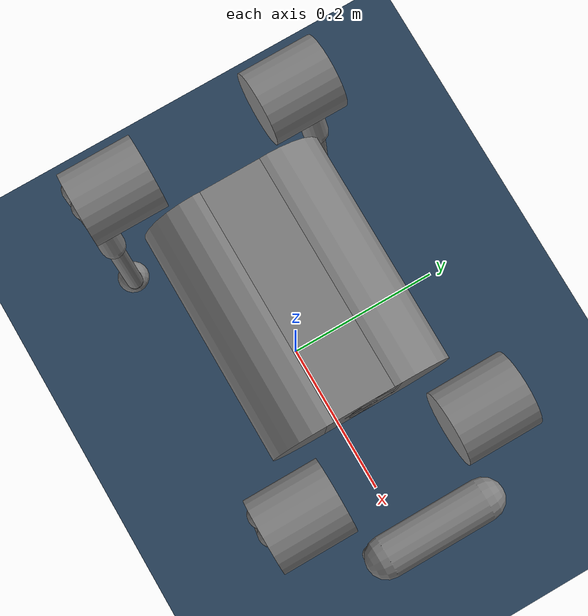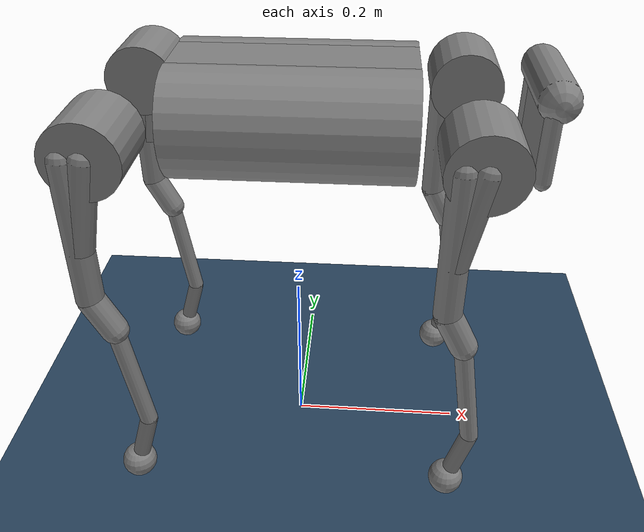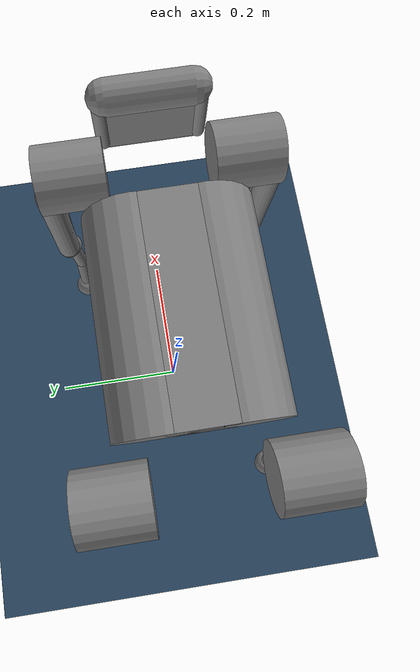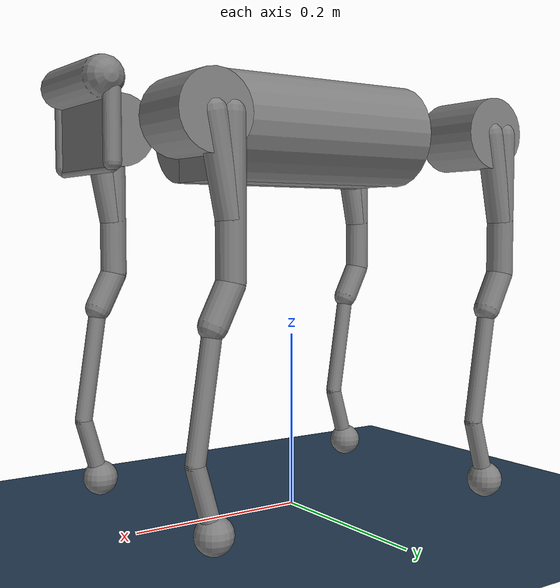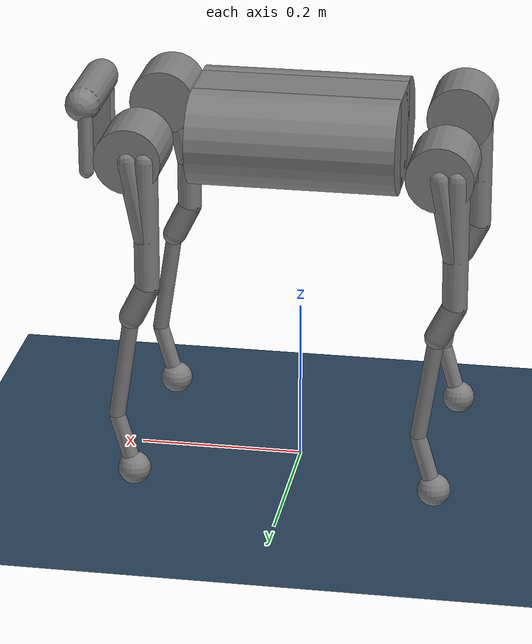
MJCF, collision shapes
<mujoco model="a1 scene">
  <include file="a1.xml"/>

  <statistic extent="1" center="0 0 .3"/>

  <visual>
    <headlight diffuse="0.6 0.6 0.6" ambient="0.3 0.3 0.3" specular="0 0 0"/>
    <rgba haze="0.15 0.25 0.35 1"/>
    <global azimuth="120" elevation="-20"/>
  </visual>

  <asset>
    <texture type="skybox" builtin="gradient" rgb1="0.3 0.5 0.7" rgb2="0 0 0" width="512" height="3072"/>
    <texture type="2d" name="groundplane" builtin="checker" mark="edge" rgb1="0.2 0.3 0.4" rgb2="0.1 0.2 0.3"
      markrgb="0.8 0.8 0.8" width="300" height="300"/>
    <material name="groundplane" texture="groundplane" texuniform="true" texrepeat="5 5" reflectance="0.2"/>
  </asset>

  <worldbody>
    <light pos="0 0 1.5" dir="0 0 -1" directional="true"/>
    <geom name="floor" size="0 0 0.05" type="plane" material="groundplane"/>
  </worldbody>

  <sensor>
    <!-- estimator measurements -->

    <framepos name="torso_pos" objtype="xbody" objname="trunk" />
    <framequat name="torso_quat" objtype="xbody" objname="trunk" />

    <jointpos name="pos_FR_hip_joint" joint="FR_hip_joint" />
    <jointpos name="pos_FR_thigh_joint" joint="FR_thigh_joint" />
    <jointpos name="pos_FR_calf_joint" joint="FR_calf_joint" />
    <jointpos name="pos_FL_hip_joint" joint="FL_hip_joint" />
    <jointpos name="pos_FL_thigh_joint" joint="FL_thigh_joint" />
    <jointpos name="pos_FL_calf_joint" joint="FL_calf_joint" />
    <jointpos name="pos_RR_hip_joint" joint="RR_hip_joint" />
    <jointpos name="pos_RR_thigh_joint" joint="RR_thigh_joint" />
    <jointpos name="pos_RR_calf_joint" joint="RR_calf_joint" />
    <jointpos name="pos_RL_hip_joint" joint="RL_hip_joint" />
    <jointpos name="pos_RL_thigh_joint" joint="RL_thigh_joint" />
    <jointpos name="pos_RL_calf_joint" joint="RL_calf_joint" />

  </sensor>
</mujoco>

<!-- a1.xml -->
<mujoco model="a1">
  <compiler angle="radian" meshdir="assets" texturedir="assets" autolimits="true"/>

  <option cone="pyramidal" impratio="100"/>

  <default>
    <default class="a1">
      <geom friction="0.6" margin="0.001"/>
      <joint axis="0 1 0" damping="2" armature="0.01" frictionloss="0.2"/>
      <position kp="100" forcerange="-33.5 33.5"/>
      <default class="abduction">
        <joint axis="1 0 0" damping="1" range="-0.802851 0.802851"/>
        <position ctrlrange="-0.802851 0.802851"/>
      </default>
      <default class="hip">
        <joint range="-1.0472 4.18879"/>
        <position ctrlrange="-1.0472 4.18879"/>
      </default>
      <default class="knee">
        <joint range="-2.69653 -0.916298"/>
        <position ctrlrange="-2.69653 -0.916298"/>
      </default>
      <default class="visual">
        <geom type="mesh" contype="0" conaffinity="0" group="2" material="dark"/>
      </default>
      <default class="collision">
        <geom group="3" type="capsule"/>
        <default class="hip_left">
          <geom size="0.04 0.04" quat="1 1 0 0" type="cylinder" pos="0 0.055 0"/>
        </default>
        <default class="hip_right">
          <geom size="0.04 0.04" quat="1 1 0 0" type="cylinder" pos="0 -0.055 0"/>
        </default>
        <default class="thigh1">
          <geom size="0.015" fromto="-0.02 0 0 -0.02 0 -0.16"/>
        </default>
        <default class="thigh2">
          <geom size="0.015" fromto="0 0 0 -0.02 0 -0.1"/>
        </default>
        <default class="thigh3">
          <geom size="0.015" fromto="-0.02 0 -0.16 0 0 -0.2"/>
        </default>
        <default class="calf1">
          <geom size="0.01" fromto="0 0 0 0.02 0 -0.13"/>
        </default>
        <default class="calf2">
          <geom size="0.01" fromto="0.02 0 -0.13 0 0 -0.2"/>
        </default>
        <default class="foot">
          <geom type="sphere" size="0.02" pos="0 0 -0.2" priority="1" solimp="0.015 1 0.02" condim="6"
            friction="0.8 0.02 0.01"/>
        </default>
      </default>
    </default>
  </default>

  <asset>
    <material name="dark" specular="0" shininess="0.25" rgba="0.2 0.2 0.2 1"/>
    <texture type="2d" name="trunk_A1" file="trunk_A1.png"/>
    <material name="carbonfibre" texture="trunk_A1" specular="0" shininess="0.25"/>

    <mesh class="a1" file="calf.obj"/>
    <mesh class="a1" file="hip.obj"/>
    <mesh class="a1" file="thigh.obj"/>
    <mesh class="a1" file="thigh_mirror.obj"/>
    <mesh class="a1" file="trunk.obj"/>
  </asset>

  <worldbody>
    <light name="spotlight" mode="targetbodycom" target="trunk" pos="0 -1 2"/>
    <body name="trunk" pos="0 0 0.43" childclass="a1">
      <freejoint/>
      <inertial mass="4.713" pos="0 0.0041 -0.0005"
        fullinertia="0.0158533 0.0377999 0.0456542 -3.66e-05 -6.11e-05 -2.75e-05"/>
      <geom class="visual" mesh="trunk" material="carbonfibre"/>
      <geom class="collision" size="0.125 0.04 0.057" type="box"/>
      <geom class="collision" quat="1 0 1 0" pos="0 -0.04 0" size="0.058 0.125" type="cylinder"/>
      <geom class="collision" quat="1 0 1 0" pos="0 +0.04 0" size="0.058 0.125" type="cylinder"/>
      <geom class="collision" pos="0.25 0 0" size="0.005 0.06 0.05" type="box"/>
      <geom class="collision" pos="0.25 0.06 -0.01" size="0.009 0.035"/>
      <geom class="collision" pos="0.25 -0.06 -0.01" size="0.009 0.035"/>
      <geom class="collision" pos="0.25 0 -0.05" size="0.005 0.06" quat="1 1 0 0"/>
      <geom class="collision" pos="0.255 0 0.0355" size="0.021 0.052" quat="1 1 0 0"/>
      <body name="FR_hip" pos="0.183 -0.047 0">
        <inertial mass="0.696" pos="-0.003311 -0.000635 3.1e-05" quat="0.507528 0.506268 0.491507 0.494499"
          diaginertia="0.000807752 0.00055293 0.000468983"/>
        <joint class="abduction" name="FR_hip_joint"/>
        <geom class="visual" mesh="hip" quat="0 1 0 0"/>
        <geom class="hip_right"/>
        <body name="FR_thigh" pos="0 -0.08505 0">
          <inertial mass="1.013" pos="-0.003237 0.022327 -0.027326" quat="0.999125 -0.00256393 -0.0409531 -0.00806091"
            diaginertia="0.00555739 0.00513936 0.00133944"/>
          <joint class="hip" name="FR_thigh_joint"/>
          <geom class="visual" mesh="thigh_mirror"/>
          <geom class="thigh1"/>
          <geom class="thigh2"/>
          <geom class="thigh3"/>
          <body name="FR_calf" pos="0 0 -0.2">
            <inertial mass="0.226" pos="0.00472659 0 -0.131975" quat="0.706886 0.017653 0.017653 0.706886"
              diaginertia="0.00340344 0.00339393 3.54834e-05"/>
            <joint class="knee" name="FR_calf_joint"/>
            <geom class="visual" mesh="calf"/>
            <geom class="calf1"/>
            <geom class="calf2"/>
            <geom class="foot"/>
          </body>
        </body>
      </body>
      <body name="FL_hip" pos="0.183 0.047 0">
        <inertial mass="0.696" pos="-0.003311 0.000635 3.1e-05" quat="0.494499 0.491507 0.506268 0.507528"
          diaginertia="0.000807752 0.00055293 0.000468983"/>
        <joint class="abduction" name="FL_hip_joint"/>
        <geom class="visual" mesh="hip"/>
        <geom class="hip_left"/>
        <geom class="collision" size="0.04 0.04" pos="0 0.055 0" quat="1 1 0 0" type="cylinder"/>
        <body name="FL_thigh" pos="0 0.08505 0">
          <inertial mass="1.013" pos="-0.003237 -0.022327 -0.027326" quat="0.999125 0.00256393 -0.0409531 0.00806091"
            diaginertia="0.00555739 0.00513936 0.00133944"/>
          <joint class="hip" name="FL_thigh_joint"/>
          <geom class="visual" mesh="thigh"/>
          <geom class="thigh1"/>
          <geom class="thigh2"/>
          <geom class="thigh3"/>
          <body name="FL_calf" pos="0 0 -0.2">
            <inertial mass="0.226" pos="0.00472659 0 -0.131975" quat="0.706886 0.017653 0.017653 0.706886"
              diaginertia="0.00340344 0.00339393 3.54834e-05"/>
            <joint class="knee" name="FL_calf_joint"/>
            <geom class="visual" mesh="calf"/>
            <geom class="calf1"/>
            <geom class="calf2"/>
            <geom class="foot"/>
          </body>
        </body>
      </body>
      <body name="RR_hip" pos="-0.183 -0.047 0">
        <inertial mass="0.696" pos="0.003311 -0.000635 3.1e-05" quat="0.491507 0.494499 0.507528 0.506268"
          diaginertia="0.000807752 0.00055293 0.000468983"/>
        <joint class="abduction" name="RR_hip_joint"/>
        <geom class="visual" quat="0 0 0 -1" mesh="hip"/>
        <geom class="hip_right"/>
        <body name="RR_thigh" pos="0 -0.08505 0">
          <inertial mass="1.013" pos="-0.003237 0.022327 -0.027326" quat="0.999125 -0.00256393 -0.0409531 -0.00806091"
            diaginertia="0.00555739 0.00513936 0.00133944"/>
          <joint class="hip" name="RR_thigh_joint"/>
          <geom class="visual" mesh="thigh_mirror"/>
          <geom class="thigh1"/>
          <geom class="thigh2"/>
          <geom class="thigh3"/>
          <body name="RR_calf" pos="0 0 -0.2">
            <inertial mass="0.226" pos="0.00472659 0 -0.131975" quat="0.706886 0.017653 0.017653 0.706886"
              diaginertia="0.00340344 0.00339393 3.54834e-05"/>
            <joint class="knee" name="RR_calf_joint"/>
            <geom class="visual" mesh="calf"/>
            <geom class="calf1"/>
            <geom class="calf2"/>
            <geom class="foot"/>
          </body>
        </body>
      </body>
      <body name="RL_hip" pos="-0.183 0.047 0">
        <inertial mass="0.696" pos="0.003311 0.000635 3.1e-05" quat="0.506268 0.507528 0.494499 0.491507"
          diaginertia="0.000807752 0.00055293 0.000468983"/>
        <joint class="abduction" name="RL_hip_joint"/>
        <geom class="visual" quat="0 0 1 0" mesh="hip"/>
        <geom class="hip_left"/>
        <body name="RL_thigh" pos="0 0.08505 0">
          <inertial mass="1.013" pos="-0.003237 -0.022327 -0.027326" quat="0.999125 0.00256393 -0.0409531 0.00806091"
            diaginertia="0.00555739 0.00513936 0.00133944"/>
          <joint class="hip" name="RL_thigh_joint"/>
          <geom class="visual" mesh="thigh"/>
          <geom class="thigh1"/>
          <geom class="thigh2"/>
          <geom class="thigh3"/>
          <body name="RL_calf" pos="0 0 -0.2">
            <inertial mass="0.226" pos="0.00472659 0 -0.131975" quat="0.706886 0.017653 0.017653 0.706886"
              diaginertia="0.00340344 0.00339393 3.54834e-05"/>
            <joint class="knee" name="RL_calf_joint"/>
            <geom class="visual" mesh="calf"/>
            <geom class="calf1"/>
            <geom class="calf2"/>
            <geom class="foot"/>
          </body>
        </body>
      </body>
    </body>
  </worldbody>

  <actuator>
    <position class="abduction" name="FR_hip" joint="FR_hip_joint"/>
    <position class="hip" name="FR_thigh" joint="FR_thigh_joint"/>
    <position class="knee" name="FR_calf" joint="FR_calf_joint"/>
    <position class="abduction" name="FL_hip" joint="FL_hip_joint"/>
    <position class="hip" name="FL_thigh" joint="FL_thigh_joint"/>
    <position class="knee" name="FL_calf" joint="FL_calf_joint"/>
    <position class="abduction" name="RR_hip" joint="RR_hip_joint"/>
    <position class="hip" name="RR_thigh" joint="RR_thigh_joint"/>
    <position class="knee" name="RR_calf" joint="RR_calf_joint"/>
    <position class="abduction" name="RL_hip" joint="RL_hip_joint"/>
    <position class="hip" name="RL_thigh" joint="RL_thigh_joint"/>
    <position class="knee" name="RL_calf" joint="RL_calf_joint"/>
  </actuator>

  <keyframe>
    <key name="home" qpos="0 0 0.27 1 0 0 0 0 0.9 -1.8 0 0.9 -1.8 0 0.9 -1.8 0 0.9 -1.8"
      ctrl="0 0.9 -1.8 0 0.9 -1.8 0 0.9 -1.8 0 0.9 -1.8"/>
    <key name="sit"
      qpos="0 0 0.08
            1 0 0 0
            0.073 1.34 -2.83
            0.073 1.34 -2.83
            0.073 1.34 -2.83
            0.073 1.34 -2.83"
      ctrl="0.073 1.34 -2.83
            0.073 1.34 -2.83
            0.073 1.34 -2.83
            0.073 1.34 -2.83"/>
    <key name="tune"
      qpos="0 0 0.08
            1 0 0 0
            -0.1 1.34 -2.83
            0.1 1.34 -2.83
            -0.1 1.34 -2.83
            0.1 1.34 -2.83"
      ctrl="-0.1 1.34 -2.83
            0.1 1.34 -2.83
            -0.1 1.34 -2.83
            0.1 1.34 -2.83"/>

    <key name="stand"
      qpos="0 0 0.30
            1 0 0 0
            -0.1 0.8 -1.5
            0.1 0.8 -1.5
            -0.1 1.0 -1.5
            0.1 1.0 -1.5"/>

    <key name="bipedal"
      qpos="0 0 0.49
            0.7071068 0 -0.7071068 0
            -0.1 1.49 -1.5
            0.1 1.49 -1.5
            -0.1 2.25 -1.5
            0.1 2.25 -1.5"
      qvel="0 0 0
            0 0 0
            0 0 0
            0 0 0
            0 0 0
            0 0 0"/>
    <key name="bipedal2"
      qpos="0 0 0.45
            0.7071068 0 -0.7071068 0
            -0.1 1.49 -1.5
            0.1 1.49 -1.5
            -0.1 2.41 -1.81
            0.1 2.41 -1.81"
      qvel="0 0 0
            0 0 0
            0 0 0
            0 0 0
            0 0 0
            0 0 0"/>
    <key name="sitsup"
      qpos="0 0 0.30
            0.7071068 0 -0.7071068 0
            -0.1 1.49 -1.5
            0.1 1.49 -1.5
            -0.1 2.64 -2.58
            0.1 2.64 -2.58"/>
  </keyframe>
</mujoco>
